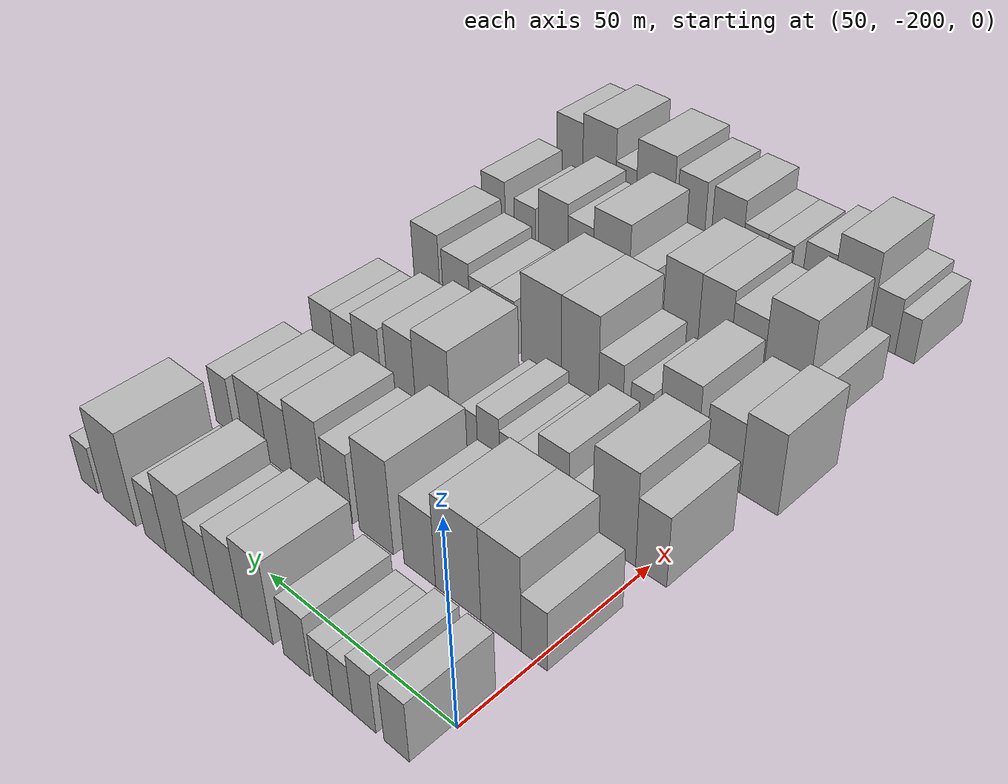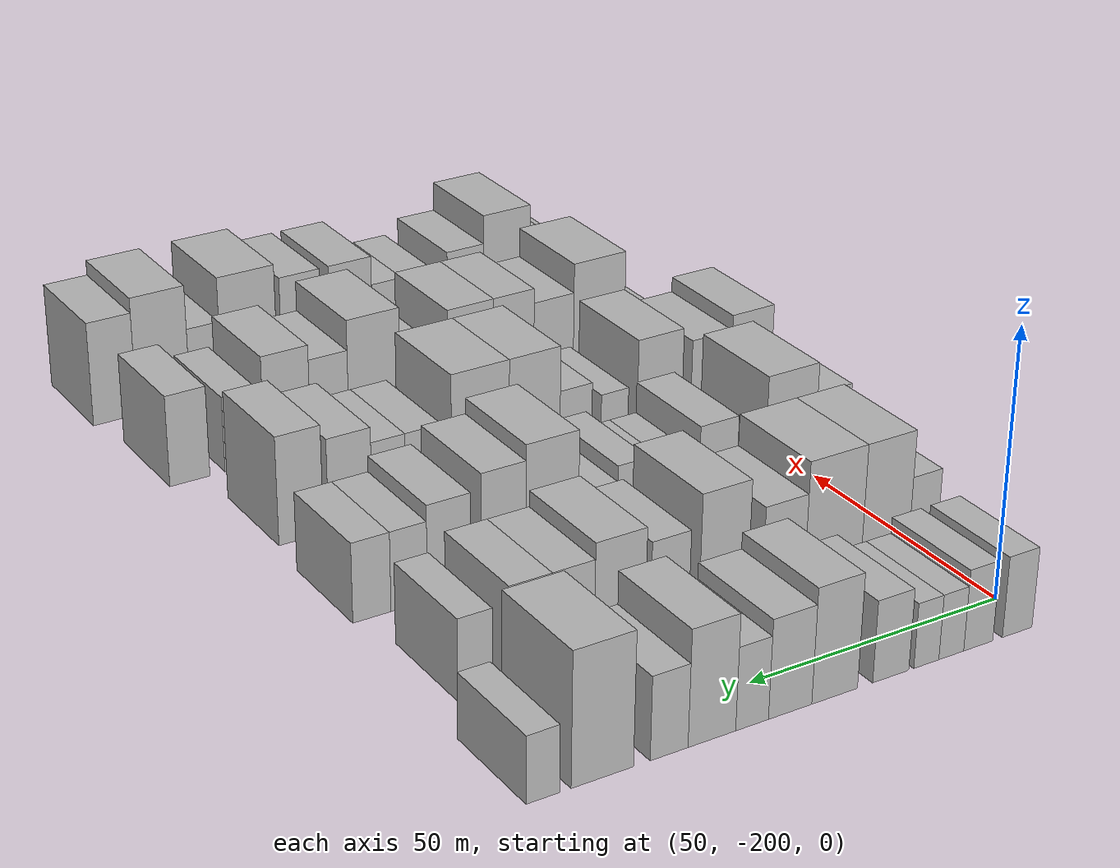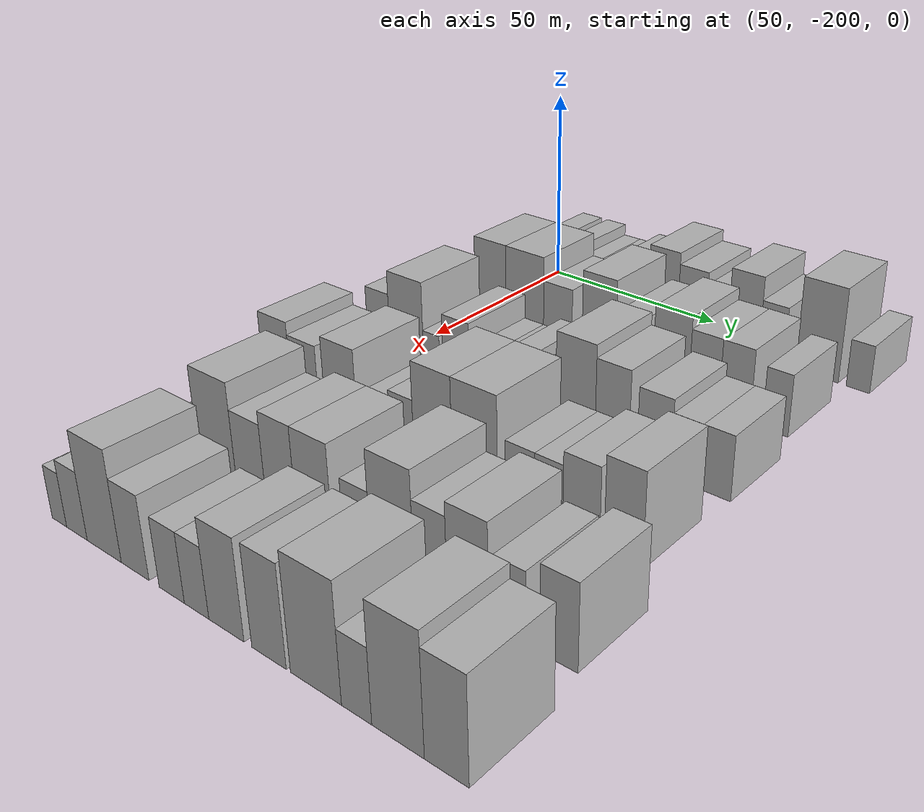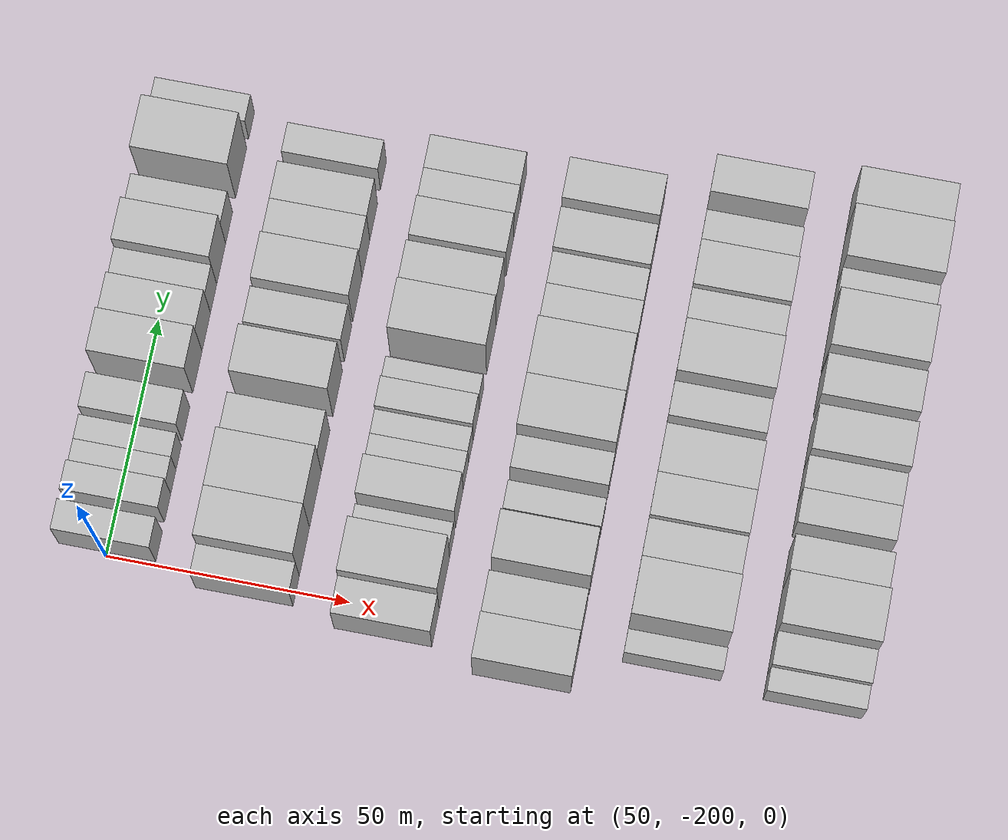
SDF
<sdf version="1.6">
 <world name="default">
  <model name="building_37">
   <static>1</static>
   <pose>50.0000 -196.0622 0 0.000000 0.000000 0.000000</pose>
   <link name="link">
    <pose>0 0 7.50 0 0 0</pose>
    <collision name="collision"><geometry><box><size>20.0000 6.2299 15.0000</size></box></geometry></collision>
    <visual name="visual">
     <cast_shadows>0</cast_shadows>
     <geometry><box><size>20.0000 6.2299 15.0000</size></box></geometry>
     <material>
      <script>
       <uri>model://HANNAS_wall/materials/scripts</uri>
       <uri>model://HANNAS_wall/materials/textures</uri>
       <name>vrc/HANNAS_wall</name>
      </script>
     </material>
    </visual>
   </link>
  </model>
  <model name="building_38">
   <static>1</static>
   <pose>50.0000 -187.9374 0 0.000000 0.000000 0.000000</pose>
   <link name="link">
    <pose>0 0 7.50 0 0 0</pose>
    <collision name="collision"><geometry><box><size>20.0000 6.0197 15.0000</size></box></geometry></collision>
    <visual name="visual">
     <cast_shadows>0</cast_shadows>
     <geometry><box><size>20.0000 6.0197 15.0000</size></box></geometry>
     <material>
      <script>
       <uri>model://HANNAS_wall/materials/scripts</uri>
       <uri>model://HANNAS_wall/materials/textures</uri>
       <name>vrc/HANNAS_wall</name>
      </script>
     </material>
    </visual>
   </link>
  </model>
  <model name="building_39">
   <static>1</static>
   <pose>50.0000 -182.3814 0 0.000000 0.000000 0.000000</pose>
   <link name="link">
    <pose>0 0 6.00 0 0 0</pose>
    <collision name="collision"><geometry><box><size>20.0000 5.0922 12.0000</size></box></geometry></collision>
    <visual name="visual">
     <cast_shadows>0</cast_shadows>
     <geometry><box><size>20.0000 5.0922 12.0000</size></box></geometry>
     <material>
      <script>
       <uri>model://HANNAS_wall/materials/scripts</uri>
       <uri>model://HANNAS_wall/materials/textures</uri>
       <name>vrc/HANNAS_wall</name>
      </script>
     </material>
    </visual>
   </link>
  </model>
  <model name="building_40">
   <static>1</static>
   <pose>50.0000 -177.3009 0 0.000000 0.000000 0.000000</pose>
   <link name="link">
    <pose>0 0 6.00 0 0 0</pose>
    <collision name="collision"><geometry><box><size>20.0000 5.0688 12.0000</size></box></geometry></collision>
    <visual name="visual">
     <cast_shadows>0</cast_shadows>
     <geometry><box><size>20.0000 5.0688 12.0000</size></box></geometry>
     <material>
      <script>
       <uri>model://HANNAS_wall/materials/scripts</uri>
       <uri>model://HANNAS_wall/materials/textures</uri>
       <name>vrc/HANNAS_wall</name>
      </script>
     </material>
    </visual>
   </link>
  </model>
  <model name="building_41">
   <static>1</static>
   <pose>50.0000 -170.1626 0 0.000000 0.000000 0.000000</pose>
   <link name="link">
    <pose>0 0 7.50 0 0 0</pose>
    <collision name="collision"><geometry><box><size>20.0000 7.2078 15.0000</size></box></geometry></collision>
    <visual name="visual">
     <cast_shadows>0</cast_shadows>
     <geometry><box><size>20.0000 7.2078 15.0000</size></box></geometry>
     <material>
      <script>
       <uri>model://HANNAS_wall/materials/scripts</uri>
       <uri>model://HANNAS_wall/materials/textures</uri>
       <name>vrc/HANNAS_wall</name>
      </script>
     </material>
    </visual>
   </link>
  </model>
  <model name="building_42">
   <static>1</static>
   <pose>50.0000 -159.1033 0 0.000000 0.000000 0.000000</pose>
   <link name="link">
    <pose>0 0 10.50 0 0 0</pose>
    <collision name="collision"><geometry><box><size>20.0000 8.9109 21.0000</size></box></geometry></collision>
    <visual name="visual">
     <cast_shadows>0</cast_shadows>
     <geometry><box><size>20.0000 8.9109 21.0000</size></box></geometry>
     <material>
      <script>
       <uri>model://HANNAS_wall/materials/scripts</uri>
       <uri>model://HANNAS_wall/materials/textures</uri>
       <name>vrc/HANNAS_wall</name>
      </script>
     </material>
    </visual>
   </link>
  </model>
  <model name="building_43">
   <static>1</static>
   <pose>50.0000 -150.5061 0 0.000000 0.000000 0.000000</pose>
   <link name="link">
    <pose>0 0 9.00 0 0 0</pose>
    <collision name="collision"><geometry><box><size>20.0000 8.2834 18.0000</size></box></geometry></collision>
    <visual name="visual">
     <cast_shadows>0</cast_shadows>
     <geometry><box><size>20.0000 8.2834 18.0000</size></box></geometry>
     <material>
      <script>
       <uri>model://HANNAS_wall/materials/scripts</uri>
       <uri>model://HANNAS_wall/materials/textures</uri>
       <name>vrc/HANNAS_wall</name>
      </script>
     </material>
    </visual>
   </link>
  </model>
  <model name="building_44">
   <static>1</static>
   <pose>50.0000 -143.2804 0 0.000000 0.000000 0.000000</pose>
   <link name="link">
    <pose>0 0 7.50 0 0 0</pose>
    <collision name="collision"><geometry><box><size>20.0000 6.1679 15.0000</size></box></geometry></collision>
    <visual name="visual">
     <cast_shadows>0</cast_shadows>
     <geometry><box><size>20.0000 6.1679 15.0000</size></box></geometry>
     <material>
      <script>
       <uri>model://HANNAS_wall/materials/scripts</uri>
       <uri>model://HANNAS_wall/materials/textures</uri>
       <name>vrc/HANNAS_wall</name>
      </script>
     </material>
    </visual>
   </link>
  </model>
  <model name="building_45">
   <static>1</static>
   <pose>50.0000 -135.7848 0 0.000000 0.000000 0.000000</pose>
   <link name="link">
    <pose>0 0 10.50 0 0 0</pose>
    <collision name="collision"><geometry><box><size>20.0000 8.8232 21.0000</size></box></geometry></collision>
    <visual name="visual">
     <cast_shadows>0</cast_shadows>
     <geometry><box><size>20.0000 8.8232 21.0000</size></box></geometry>
     <material>
      <script>
       <uri>model://HANNAS_wall/materials/scripts</uri>
       <uri>model://HANNAS_wall/materials/textures</uri>
       <name>vrc/HANNAS_wall</name>
      </script>
     </material>
    </visual>
   </link>
  </model>
  <model name="building_46">
   <static>1</static>
   <pose>50.0000 -127.9279 0 0.000000 0.000000 0.000000</pose>
   <link name="link">
    <pose>0 0 7.50 0 0 0</pose>
    <collision name="collision"><geometry><box><size>20.0000 6.8906 15.0000</size></box></geometry></collision>
    <visual name="visual">
     <cast_shadows>0</cast_shadows>
     <geometry><box><size>20.0000 6.8906 15.0000</size></box></geometry>
     <material>
      <script>
       <uri>model://HANNAS_wall/materials/scripts</uri>
       <uri>model://HANNAS_wall/materials/textures</uri>
       <name>vrc/HANNAS_wall</name>
      </script>
     </material>
    </visual>
   </link>
  </model>
  <model name="building_47">
   <static>1</static>
   <pose>50.0000 -115.9457 0 0.000000 0.000000 0.000000</pose>
   <link name="link">
    <pose>0 0 12.00 0 0 0</pose>
    <collision name="collision"><geometry><box><size>20.0000 11.0738 24.0000</size></box></geometry></collision>
    <visual name="visual">
     <cast_shadows>0</cast_shadows>
     <geometry><box><size>20.0000 11.0738 24.0000</size></box></geometry>
     <material>
      <script>
       <uri>model://HANNAS_wall/materials/scripts</uri>
       <uri>model://HANNAS_wall/materials/textures</uri>
       <name>vrc/HANNAS_wall</name>
      </script>
     </material>
    </visual>
   </link>
  </model>
  <model name="building_48">
   <static>1</static>
   <pose>50.0000 -105.5017 0 0.000000 0.000000 0.000000</pose>
   <link name="link">
    <pose>0 0 6.00 0 0 0</pose>
    <collision name="collision"><geometry><box><size>20.0000 5.8141 12.0000</size></box></geometry></collision>
    <visual name="visual">
     <cast_shadows>0</cast_shadows>
     <geometry><box><size>20.0000 5.8141 12.0000</size></box></geometry>
     <material>
      <script>
       <uri>model://HANNAS_wall/materials/scripts</uri>
       <uri>model://HANNAS_wall/materials/textures</uri>
       <name>vrc/HANNAS_wall</name>
      </script>
     </material>
    </visual>
   </link>
  </model>
  <model name="building_154">
   <static>1</static>
   <pose>79.0000 -199.7147 0 0.000000 0.000000 0.000000</pose>
   <link name="link">
    <pose>0 0 7.50 0 0 0</pose>
    <collision name="collision"><geometry><box><size>20.0000 6.2357 15.0000</size></box></geometry></collision>
    <visual name="visual">
     <cast_shadows>0</cast_shadows>
     <geometry><box><size>20.0000 6.2357 15.0000</size></box></geometry>
     <material>
      <script>
       <uri>model://HANNAS_wall/materials/scripts</uri>
       <uri>model://HANNAS_wall/materials/textures</uri>
       <name>vrc/HANNAS_wall</name>
      </script>
     </material>
    </visual>
   </link>
  </model>
  <model name="building_155">
   <static>1</static>
   <pose>79.0000 -191.5284 0 0.000000 0.000000 0.000000</pose>
   <link name="link">
    <pose>0 0 12.00 0 0 0</pose>
    <collision name="collision"><geometry><box><size>20.0000 10.1368 24.0000</size></box></geometry></collision>
    <visual name="visual">
     <cast_shadows>0</cast_shadows>
     <geometry><box><size>20.0000 10.1368 24.0000</size></box></geometry>
     <material>
      <script>
       <uri>model://HANNAS_wall/materials/scripts</uri>
       <uri>model://HANNAS_wall/materials/textures</uri>
       <name>vrc/HANNAS_wall</name>
      </script>
     </material>
    </visual>
   </link>
  </model>
  <model name="building_156">
   <static>1</static>
   <pose>79.0000 -180.5337 0 0.000000 0.000000 0.000000</pose>
   <link name="link">
    <pose>0 0 12.00 0 0 0</pose>
    <collision name="collision"><geometry><box><size>20.0000 11.8526 24.0000</size></box></geometry></collision>
    <visual name="visual">
     <cast_shadows>0</cast_shadows>
     <geometry><box><size>20.0000 11.8526 24.0000</size></box></geometry>
     <material>
      <script>
       <uri>model://HANNAS_wall/materials/scripts</uri>
       <uri>model://HANNAS_wall/materials/textures</uri>
       <name>vrc/HANNAS_wall</name>
      </script>
     </material>
    </visual>
   </link>
  </model>
  <model name="building_157">
   <static>1</static>
   <pose>79.0000 -170.2882 0 0.000000 0.000000 0.000000</pose>
   <link name="link">
    <pose>0 0 9.00 0 0 0</pose>
    <collision name="collision"><geometry><box><size>20.0000 8.6382 18.0000</size></box></geometry></collision>
    <visual name="visual">
     <cast_shadows>0</cast_shadows>
     <geometry><box><size>20.0000 8.6382 18.0000</size></box></geometry>
     <material>
      <script>
       <uri>model://HANNAS_wall/materials/scripts</uri>
       <uri>model://HANNAS_wall/materials/textures</uri>
       <name>vrc/HANNAS_wall</name>
      </script>
     </material>
    </visual>
   </link>
  </model>
  <model name="building_158">
   <static>1</static>
   <pose>79.0000 -158.1183 0 0.000000 0.000000 0.000000</pose>
   <link name="link">
    <pose>0 0 12.00 0 0 0</pose>
    <collision name="collision"><geometry><box><size>20.0000 9.7017 24.0000</size></box></geometry></collision>
    <visual name="visual">
     <cast_shadows>0</cast_shadows>
     <geometry><box><size>20.0000 9.7017 24.0000</size></box></geometry>
     <material>
      <script>
       <uri>model://HANNAS_wall/materials/scripts</uri>
       <uri>model://HANNAS_wall/materials/textures</uri>
       <name>vrc/HANNAS_wall</name>
      </script>
     </material>
    </visual>
   </link>
  </model>
  <model name="building_159">
   <static>1</static>
   <pose>79.0000 -147.5136 0 0.000000 0.000000 0.000000</pose>
   <link name="link">
    <pose>0 0 9.00 0 0 0</pose>
    <collision name="collision"><geometry><box><size>20.0000 7.5076 18.0000</size></box></geometry></collision>
    <visual name="visual">
     <cast_shadows>0</cast_shadows>
     <geometry><box><size>20.0000 7.5076 18.0000</size></box></geometry>
     <material>
      <script>
       <uri>model://HANNAS_wall/materials/scripts</uri>
       <uri>model://HANNAS_wall/materials/textures</uri>
       <name>vrc/HANNAS_wall</name>
      </script>
     </material>
    </visual>
   </link>
  </model>
  <model name="building_160">
   <static>1</static>
   <pose>79.0000 -137.8927 0 0.000000 0.000000 0.000000</pose>
   <link name="link">
    <pose>0 0 10.50 0 0 0</pose>
    <collision name="collision"><geometry><box><size>20.0000 9.7341 21.0000</size></box></geometry></collision>
    <visual name="visual">
     <cast_shadows>0</cast_shadows>
     <geometry><box><size>20.0000 9.7341 21.0000</size></box></geometry>
     <material>
      <script>
       <uri>model://HANNAS_wall/materials/scripts</uri>
       <uri>model://HANNAS_wall/materials/textures</uri>
       <name>vrc/HANNAS_wall</name>
      </script>
     </material>
    </visual>
   </link>
  </model>
  <model name="building_161">
   <static>1</static>
   <pose>79.0000 -129.0497 0 0.000000 0.000000 0.000000</pose>
   <link name="link">
    <pose>0 0 9.00 0 0 0</pose>
    <collision name="collision"><geometry><box><size>20.0000 7.9519 18.0000</size></box></geometry></collision>
    <visual name="visual">
     <cast_shadows>0</cast_shadows>
     <geometry><box><size>20.0000 7.9519 18.0000</size></box></geometry>
     <material>
      <script>
       <uri>model://HANNAS_wall/materials/scripts</uri>
       <uri>model://HANNAS_wall/materials/textures</uri>
       <name>vrc/HANNAS_wall</name>
      </script>
     </material>
    </visual>
   </link>
  </model>
  <model name="building_162">
   <static>1</static>
   <pose>79.0000 -121.0985 0 0.000000 0.000000 0.000000</pose>
   <link name="link">
    <pose>0 0 9.00 0 0 0</pose>
    <collision name="collision"><geometry><box><size>20.0000 7.9505 18.0000</size></box></geometry></collision>
    <visual name="visual">
     <cast_shadows>0</cast_shadows>
     <geometry><box><size>20.0000 7.9505 18.0000</size></box></geometry>
     <material>
      <script>
       <uri>model://HANNAS_wall/materials/scripts</uri>
       <uri>model://HANNAS_wall/materials/textures</uri>
       <name>vrc/HANNAS_wall</name>
      </script>
     </material>
    </visual>
   </link>
  </model>
  <model name="building_163">
   <static>1</static>
   <pose>79.0000 -110.9820 0 0.000000 0.000000 0.000000</pose>
   <link name="link">
    <pose>0 0 7.50 0 0 0</pose>
    <collision name="collision"><geometry><box><size>20.0000 6.2825 15.0000</size></box></geometry></collision>
    <visual name="visual">
     <cast_shadows>0</cast_shadows>
     <geometry><box><size>20.0000 6.2825 15.0000</size></box></geometry>
     <material>
      <script>
       <uri>model://HANNAS_wall/materials/scripts</uri>
       <uri>model://HANNAS_wall/materials/textures</uri>
       <name>vrc/HANNAS_wall</name>
      </script>
     </material>
    </visual>
   </link>
  </model>
  <model name="building_272">
   <static>1</static>
   <pose>108.0000 -201.8906 0 0.000000 0.000000 0.000000</pose>
   <link name="link">
    <pose>0 0 9.00 0 0 0</pose>
    <collision name="collision"><geometry><box><size>20.0000 7.5338 18.0000</size></box></geometry></collision>
    <visual name="visual">
     <cast_shadows>0</cast_shadows>
     <geometry><box><size>20.0000 7.5338 18.0000</size></box></geometry>
     <material>
      <script>
       <uri>model://HANNAS_wall/materials/scripts</uri>
       <uri>model://HANNAS_wall/materials/textures</uri>
       <name>vrc/HANNAS_wall</name>
      </script>
     </material>
    </visual>
   </link>
  </model>
  <model name="building_273">
   <static>1</static>
   <pose>108.0000 -192.6743 0 0.000000 0.000000 0.000000</pose>
   <link name="link">
    <pose>0 0 12.00 0 0 0</pose>
    <collision name="collision"><geometry><box><size>20.0000 10.8989 24.0000</size></box></geometry></collision>
    <visual name="visual">
     <cast_shadows>0</cast_shadows>
     <geometry><box><size>20.0000 10.8989 24.0000</size></box></geometry>
     <material>
      <script>
       <uri>model://HANNAS_wall/materials/scripts</uri>
       <uri>model://HANNAS_wall/materials/textures</uri>
       <name>vrc/HANNAS_wall</name>
      </script>
     </material>
    </visual>
   </link>
  </model>
  <model name="building_274">
   <static>1</static>
   <pose>108.0000 -184.7033 0 0.000000 0.000000 0.000000</pose>
   <link name="link">
    <pose>0 0 6.00 0 0 0</pose>
    <collision name="collision"><geometry><box><size>20.0000 5.0431 12.0000</size></box></geometry></collision>
    <visual name="visual">
     <cast_shadows>0</cast_shadows>
     <geometry><box><size>20.0000 5.0431 12.0000</size></box></geometry>
     <material>
      <script>
       <uri>model://HANNAS_wall/materials/scripts</uri>
       <uri>model://HANNAS_wall/materials/textures</uri>
       <name>vrc/HANNAS_wall</name>
      </script>
     </material>
    </visual>
   </link>
  </model>
  <model name="building_275">
   <static>1</static>
   <pose>108.0000 -177.1584 0 0.000000 0.000000 0.000000</pose>
   <link name="link">
    <pose>0 0 9.00 0 0 0</pose>
    <collision name="collision"><geometry><box><size>20.0000 8.0467 18.0000</size></box></geometry></collision>
    <visual name="visual">
     <cast_shadows>0</cast_shadows>
     <geometry><box><size>20.0000 8.0467 18.0000</size></box></geometry>
     <material>
      <script>
       <uri>model://HANNAS_wall/materials/scripts</uri>
       <uri>model://HANNAS_wall/materials/textures</uri>
       <name>vrc/HANNAS_wall</name>
      </script>
     </material>
    </visual>
   </link>
  </model>
  <model name="building_276">
   <static>1</static>
   <pose>108.0000 -170.3274 0 0.000000 0.000000 0.000000</pose>
   <link name="link">
    <pose>0 0 6.00 0 0 0</pose>
    <collision name="collision"><geometry><box><size>20.0000 5.6153 12.0000</size></box></geometry></collision>
    <visual name="visual">
     <cast_shadows>0</cast_shadows>
     <geometry><box><size>20.0000 5.6153 12.0000</size></box></geometry>
     <material>
      <script>
       <uri>model://HANNAS_wall/materials/scripts</uri>
       <uri>model://HANNAS_wall/materials/textures</uri>
       <name>vrc/HANNAS_wall</name>
      </script>
     </material>
    </visual>
   </link>
  </model>
  <model name="building_277">
   <static>1</static>
   <pose>108.0000 -164.9967 0 0.000000 0.000000 0.000000</pose>
   <link name="link">
    <pose>0 0 6.00 0 0 0</pose>
    <collision name="collision"><geometry><box><size>20.0000 5.0461 12.0000</size></box></geometry></collision>
    <visual name="visual">
     <cast_shadows>0</cast_shadows>
     <geometry><box><size>20.0000 5.0461 12.0000</size></box></geometry>
     <material>
      <script>
       <uri>model://HANNAS_wall/materials/scripts</uri>
       <uri>model://HANNAS_wall/materials/textures</uri>
       <name>vrc/HANNAS_wall</name>
      </script>
     </material>
    </visual>
   </link>
  </model>
  <model name="building_278">
   <static>1</static>
   <pose>108.0000 -159.3446 0 0.000000 0.000000 0.000000</pose>
   <link name="link">
    <pose>0 0 7.50 0 0 0</pose>
    <collision name="collision"><geometry><box><size>20.0000 6.2581 15.0000</size></box></geometry></collision>
    <visual name="visual">
     <cast_shadows>0</cast_shadows>
     <geometry><box><size>20.0000 6.2581 15.0000</size></box></geometry>
     <material>
      <script>
       <uri>model://HANNAS_wall/materials/scripts</uri>
       <uri>model://HANNAS_wall/materials/textures</uri>
       <name>vrc/HANNAS_wall</name>
      </script>
     </material>
    </visual>
   </link>
  </model>
  <model name="building_279">
   <static>1</static>
   <pose>108.0000 -153.7926 0 0.000000 0.000000 0.000000</pose>
   <link name="link">
    <pose>0 0 6.00 0 0 0</pose>
    <collision name="collision"><geometry><box><size>20.0000 4.8460 12.0000</size></box></geometry></collision>
    <visual name="visual">
     <cast_shadows>0</cast_shadows>
     <geometry><box><size>20.0000 4.8460 12.0000</size></box></geometry>
     <material>
      <script>
       <uri>model://HANNAS_wall/materials/scripts</uri>
       <uri>model://HANNAS_wall/materials/textures</uri>
       <name>vrc/HANNAS_wall</name>
      </script>
     </material>
    </visual>
   </link>
  </model>
  <model name="building_280">
   <static>1</static>
   <pose>108.0000 -143.1485 0 0.000000 0.000000 0.000000</pose>
   <link name="link">
    <pose>0 0 12.00 0 0 0</pose>
    <collision name="collision"><geometry><box><size>20.0000 10.4421 24.0000</size></box></geometry></collision>
    <visual name="visual">
     <cast_shadows>0</cast_shadows>
     <geometry><box><size>20.0000 10.4421 24.0000</size></box></geometry>
     <material>
      <script>
       <uri>model://HANNAS_wall/materials/scripts</uri>
       <uri>model://HANNAS_wall/materials/textures</uri>
       <name>vrc/HANNAS_wall</name>
      </script>
     </material>
    </visual>
   </link>
  </model>
  <model name="building_281">
   <static>1</static>
   <pose>108.0000 -133.5774 0 0.000000 0.000000 0.000000</pose>
   <link name="link">
    <pose>0 0 10.50 0 0 0</pose>
    <collision name="collision"><geometry><box><size>20.0000 8.7001 21.0000</size></box></geometry></collision>
    <visual name="visual">
     <cast_shadows>0</cast_shadows>
     <geometry><box><size>20.0000 8.7001 21.0000</size></box></geometry>
     <material>
      <script>
       <uri>model://HANNAS_wall/materials/scripts</uri>
       <uri>model://HANNAS_wall/materials/textures</uri>
       <name>vrc/HANNAS_wall</name>
      </script>
     </material>
    </visual>
   </link>
  </model>
  <model name="building_282">
   <static>1</static>
   <pose>108.0000 -123.0430 0 0.000000 0.000000 0.000000</pose>
   <link name="link">
    <pose>0 0 9.00 0 0 0</pose>
    <collision name="collision"><geometry><box><size>20.0000 8.3687 18.0000</size></box></geometry></collision>
    <visual name="visual">
     <cast_shadows>0</cast_shadows>
     <geometry><box><size>20.0000 8.3687 18.0000</size></box></geometry>
     <material>
      <script>
       <uri>model://HANNAS_wall/materials/scripts</uri>
       <uri>model://HANNAS_wall/materials/textures</uri>
       <name>vrc/HANNAS_wall</name>
      </script>
     </material>
    </visual>
   </link>
  </model>
  <model name="building_283">
   <static>1</static>
   <pose>108.0000 -115.4103 0 0.000000 0.000000 0.000000</pose>
   <link name="link">
    <pose>0 0 7.50 0 0 0</pose>
    <collision name="collision"><geometry><box><size>20.0000 6.8967 15.0000</size></box></geometry></collision>
    <visual name="visual">
     <cast_shadows>0</cast_shadows>
     <geometry><box><size>20.0000 6.8967 15.0000</size></box></geometry>
     <material>
      <script>
       <uri>model://HANNAS_wall/materials/scripts</uri>
       <uri>model://HANNAS_wall/materials/textures</uri>
       <name>vrc/HANNAS_wall</name>
      </script>
     </material>
    </visual>
   </link>
  </model>
  <model name="building_284">
   <static>1</static>
   <pose>108.0000 -108.4004 0 0.000000 0.000000 0.000000</pose>
   <link name="link">
    <pose>0 0 7.50 0 0 0</pose>
    <collision name="collision"><geometry><box><size>20.0000 7.1233 15.0000</size></box></geometry></collision>
    <visual name="visual">
     <cast_shadows>0</cast_shadows>
     <geometry><box><size>20.0000 7.1233 15.0000</size></box></geometry>
     <material>
      <script>
       <uri>model://HANNAS_wall/materials/scripts</uri>
       <uri>model://HANNAS_wall/materials/textures</uri>
       <name>vrc/HANNAS_wall</name>
      </script>
     </material>
    </visual>
   </link>
  </model>
  <model name="building_390">
   <static>1</static>
   <pose>137.0000 -204.9074 0 0.000000 0.000000 0.000000</pose>
   <link name="link">
    <pose>0 0 10.50 0 0 0</pose>
    <collision name="collision"><geometry><box><size>20.0000 9.3126 21.0000</size></box></geometry></collision>
    <visual name="visual">
     <cast_shadows>0</cast_shadows>
     <geometry><box><size>20.0000 9.3126 21.0000</size></box></geometry>
     <material>
      <script>
       <uri>model://HANNAS_wall/materials/scripts</uri>
       <uri>model://HANNAS_wall/materials/textures</uri>
       <name>vrc/HANNAS_wall</name>
      </script>
     </material>
    </visual>
   </link>
  </model>
  <model name="building_391">
   <static>1</static>
   <pose>137.0000 -195.8137 0 0.000000 0.000000 0.000000</pose>
   <link name="link">
    <pose>0 0 9.00 0 0 0</pose>
    <collision name="collision"><geometry><box><size>20.0000 8.8749 18.0000</size></box></geometry></collision>
    <visual name="visual">
     <cast_shadows>0</cast_shadows>
     <geometry><box><size>20.0000 8.8749 18.0000</size></box></geometry>
     <material>
      <script>
       <uri>model://HANNAS_wall/materials/scripts</uri>
       <uri>model://HANNAS_wall/materials/textures</uri>
       <name>vrc/HANNAS_wall</name>
      </script>
     </material>
    </visual>
   </link>
  </model>
  <model name="building_392">
   <static>1</static>
   <pose>137.0000 -184.4291 0 0.000000 0.000000 0.000000</pose>
   <link name="link">
    <pose>0 0 10.50 0 0 0</pose>
    <collision name="collision"><geometry><box><size>20.0000 9.8943 21.0000</size></box></geometry></collision>
    <visual name="visual">
     <cast_shadows>0</cast_shadows>
     <geometry><box><size>20.0000 9.8943 21.0000</size></box></geometry>
     <material>
      <script>
       <uri>model://HANNAS_wall/materials/scripts</uri>
       <uri>model://HANNAS_wall/materials/textures</uri>
       <name>vrc/HANNAS_wall</name>
      </script>
     </material>
    </visual>
   </link>
  </model>
  <model name="building_393">
   <static>1</static>
   <pose>137.0000 -174.5512 0 0.000000 0.000000 0.000000</pose>
   <link name="link">
    <pose>0 0 6.00 0 0 0</pose>
    <collision name="collision"><geometry><box><size>20.0000 5.8615 12.0000</size></box></geometry></collision>
    <visual name="visual">
     <cast_shadows>0</cast_shadows>
     <geometry><box><size>20.0000 5.8615 12.0000</size></box></geometry>
     <material>
      <script>
       <uri>model://HANNAS_wall/materials/scripts</uri>
       <uri>model://HANNAS_wall/materials/textures</uri>
       <name>vrc/HANNAS_wall</name>
      </script>
     </material>
    </visual>
   </link>
  </model>
  <model name="building_394">
   <static>1</static>
   <pose>137.0000 -166.2139 0 0.000000 0.000000 0.000000</pose>
   <link name="link">
    <pose>0 0 7.50 0 0 0</pose>
    <collision name="collision"><geometry><box><size>20.0000 6.8131 15.0000</size></box></geometry></collision>
    <visual name="visual">
     <cast_shadows>0</cast_shadows>
     <geometry><box><size>20.0000 6.8131 15.0000</size></box></geometry>
     <material>
      <script>
       <uri>model://HANNAS_wall/materials/scripts</uri>
       <uri>model://HANNAS_wall/materials/textures</uri>
       <name>vrc/HANNAS_wall</name>
      </script>
     </material>
    </visual>
   </link>
  </model>
  <model name="building_395">
   <static>1</static>
   <pose>137.0000 -157.4845 0 0.000000 0.000000 0.000000</pose>
   <link name="link">
    <pose>0 0 12.00 0 0 0</pose>
    <collision name="collision"><geometry><box><size>20.0000 10.6457 24.0000</size></box></geometry></collision>
    <visual name="visual">
     <cast_shadows>0</cast_shadows>
     <geometry><box><size>20.0000 10.6457 24.0000</size></box></geometry>
     <material>
      <script>
       <uri>model://HANNAS_wall/materials/scripts</uri>
       <uri>model://HANNAS_wall/materials/textures</uri>
       <name>vrc/HANNAS_wall</name>
      </script>
     </material>
    </visual>
   </link>
  </model>
  <model name="building_396">
   <static>1</static>
   <pose>137.0000 -146.2264 0 0.000000 0.000000 0.000000</pose>
   <link name="link">
    <pose>0 0 12.00 0 0 0</pose>
    <collision name="collision"><geometry><box><size>20.0000 11.8704 24.0000</size></box></geometry></collision>
    <visual name="visual">
     <cast_shadows>0</cast_shadows>
     <geometry><box><size>20.0000 11.8704 24.0000</size></box></geometry>
     <material>
      <script>
       <uri>model://HANNAS_wall/materials/scripts</uri>
       <uri>model://HANNAS_wall/materials/textures</uri>
       <name>vrc/HANNAS_wall</name>
      </script>
     </material>
    </visual>
   </link>
  </model>
  <model name="building_397">
   <static>1</static>
   <pose>137.0000 -134.6455 0 0.000000 0.000000 0.000000</pose>
   <link name="link">
    <pose>0 0 7.50 0 0 0</pose>
    <collision name="collision"><geometry><box><size>20.0000 7.2915 15.0000</size></box></geometry></collision>
    <visual name="visual">
     <cast_shadows>0</cast_shadows>
     <geometry><box><size>20.0000 7.2915 15.0000</size></box></geometry>
     <material>
      <script>
       <uri>model://HANNAS_wall/materials/scripts</uri>
       <uri>model://HANNAS_wall/materials/textures</uri>
       <name>vrc/HANNAS_wall</name>
      </script>
     </material>
    </visual>
   </link>
  </model>
  <model name="building_398">
   <static>1</static>
   <pose>137.0000 -127.6185 0 0.000000 0.000000 0.000000</pose>
   <link name="link">
    <pose>0 0 7.50 0 0 0</pose>
    <collision name="collision"><geometry><box><size>20.0000 6.7627 15.0000</size></box></geometry></collision>
    <visual name="visual">
     <cast_shadows>0</cast_shadows>
     <geometry><box><size>20.0000 6.7627 15.0000</size></box></geometry>
     <material>
      <script>
       <uri>model://HANNAS_wall/materials/scripts</uri>
       <uri>model://HANNAS_wall/materials/textures</uri>
       <name>vrc/HANNAS_wall</name>
      </script>
     </material>
    </visual>
   </link>
  </model>
  <model name="building_399">
   <static>1</static>
   <pose>137.0000 -119.9367 0 0.000000 0.000000 0.000000</pose>
   <link name="link">
    <pose>0 0 9.00 0 0 0</pose>
    <collision name="collision"><geometry><box><size>20.0000 8.6008 18.0000</size></box></geometry></collision>
    <visual name="visual">
     <cast_shadows>0</cast_shadows>
     <geometry><box><size>20.0000 8.6008 18.0000</size></box></geometry>
     <material>
      <script>
       <uri>model://HANNAS_wall/materials/scripts</uri>
       <uri>model://HANNAS_wall/materials/textures</uri>
       <name>vrc/HANNAS_wall</name>
      </script>
     </material>
    </visual>
   </link>
  </model>
  <model name="building_400">
   <static>1</static>
   <pose>137.0000 -110.3137 0 0.000000 0.000000 0.000000</pose>
   <link name="link">
    <pose>0 0 10.50 0 0 0</pose>
    <collision name="collision"><geometry><box><size>20.0000 8.6453 21.0000</size></box></geometry></collision>
    <visual name="visual">
     <cast_shadows>0</cast_shadows>
     <geometry><box><size>20.0000 8.6453 21.0000</size></box></geometry>
     <material>
      <script>
       <uri>model://HANNAS_wall/materials/scripts</uri>
       <uri>model://HANNAS_wall/materials/textures</uri>
       <name>vrc/HANNAS_wall</name>
      </script>
     </material>
    </visual>
   </link>
  </model>
  <model name="building_506">
   <static>1</static>
   <pose>166.0000 -199.0255 0 0.000000 0.000000 0.000000</pose>
   <link name="link">
    <pose>0 0 6.00 0 0 0</pose>
    <collision name="collision"><geometry><box><size>20.0000 4.8212 12.0000</size></box></geometry></collision>
    <visual name="visual">
     <cast_shadows>0</cast_shadows>
     <geometry><box><size>20.0000 4.8212 12.0000</size></box></geometry>
     <material>
      <script>
       <uri>model://HANNAS_wall/materials/scripts</uri>
       <uri>model://HANNAS_wall/materials/textures</uri>
       <name>vrc/HANNAS_wall</name>
      </script>
     </material>
    </visual>
   </link>
  </model>
  <model name="building_507">
   <static>1</static>
   <pose>166.0000 -189.7992 0 0.000000 0.000000 0.000000</pose>
   <link name="link">
    <pose>0 0 12.00 0 0 0</pose>
    <collision name="collision"><geometry><box><size>20.0000 11.6315 24.0000</size></box></geometry></collision>
    <visual name="visual">
     <cast_shadows>0</cast_shadows>
     <geometry><box><size>20.0000 11.6315 24.0000</size></box></geometry>
     <material>
      <script>
       <uri>model://HANNAS_wall/materials/scripts</uri>
       <uri>model://HANNAS_wall/materials/textures</uri>
       <name>vrc/HANNAS_wall</name>
      </script>
     </material>
    </visual>
   </link>
  </model>
  <model name="building_508">
   <static>1</static>
   <pose>166.0000 -179.5379 0 0.000000 0.000000 0.000000</pose>
   <link name="link">
    <pose>0 0 9.00 0 0 0</pose>
    <collision name="collision"><geometry><box><size>20.0000 8.8912 18.0000</size></box></geometry></collision>
    <visual name="visual">
     <cast_shadows>0</cast_shadows>
     <geometry><box><size>20.0000 8.8912 18.0000</size></box></geometry>
     <material>
      <script>
       <uri>model://HANNAS_wall/materials/scripts</uri>
       <uri>model://HANNAS_wall/materials/textures</uri>
       <name>vrc/HANNAS_wall</name>
      </script>
     </material>
    </visual>
   </link>
  </model>
  <model name="building_509">
   <static>1</static>
   <pose>166.0000 -170.6552 0 0.000000 0.000000 0.000000</pose>
   <link name="link">
    <pose>0 0 10.50 0 0 0</pose>
    <collision name="collision"><geometry><box><size>20.0000 8.8743 21.0000</size></box></geometry></collision>
    <visual name="visual">
     <cast_shadows>0</cast_shadows>
     <geometry><box><size>20.0000 8.8743 21.0000</size></box></geometry>
     <material>
      <script>
       <uri>model://HANNAS_wall/materials/scripts</uri>
       <uri>model://HANNAS_wall/materials/textures</uri>
       <name>vrc/HANNAS_wall</name>
      </script>
     </material>
    </visual>
   </link>
  </model>
  <model name="building_510">
   <static>1</static>
   <pose>166.0000 -161.2105 0 0.000000 0.000000 0.000000</pose>
   <link name="link">
    <pose>0 0 10.50 0 0 0</pose>
    <collision name="collision"><geometry><box><size>20.0000 10.0150 21.0000</size></box></geometry></collision>
    <visual name="visual">
     <cast_shadows>0</cast_shadows>
     <geometry><box><size>20.0000 10.0150 21.0000</size></box></geometry>
     <material>
      <script>
       <uri>model://HANNAS_wall/materials/scripts</uri>
       <uri>model://HANNAS_wall/materials/textures</uri>
       <name>vrc/HANNAS_wall</name>
      </script>
     </material>
    </visual>
   </link>
  </model>
  <model name="building_511">
   <static>1</static>
   <pose>166.0000 -149.6258 0 0.000000 0.000000 0.000000</pose>
   <link name="link">
    <pose>0 0 7.50 0 0 0</pose>
    <collision name="collision"><geometry><box><size>20.0000 7.1544 15.0000</size></box></geometry></collision>
    <visual name="visual">
     <cast_shadows>0</cast_shadows>
     <geometry><box><size>20.0000 7.1544 15.0000</size></box></geometry>
     <material>
      <script>
       <uri>model://HANNAS_wall/materials/scripts</uri>
       <uri>model://HANNAS_wall/materials/textures</uri>
       <name>vrc/HANNAS_wall</name>
      </script>
     </material>
    </visual>
   </link>
  </model>
  <model name="building_512">
   <static>1</static>
   <pose>166.0000 -140.6101 0 0.000000 0.000000 0.000000</pose>
   <link name="link">
    <pose>0 0 12.00 0 0 0</pose>
    <collision name="collision"><geometry><box><size>20.0000 10.8771 24.0000</size></box></geometry></collision>
    <visual name="visual">
     <cast_shadows>0</cast_shadows>
     <geometry><box><size>20.0000 10.8771 24.0000</size></box></geometry>
     <material>
      <script>
       <uri>model://HANNAS_wall/materials/scripts</uri>
       <uri>model://HANNAS_wall/materials/textures</uri>
       <name>vrc/HANNAS_wall</name>
      </script>
     </material>
    </visual>
   </link>
  </model>
  <model name="building_513">
   <static>1</static>
   <pose>166.0000 -131.2106 0 0.000000 0.000000 0.000000</pose>
   <link name="link">
    <pose>0 0 9.00 0 0 0</pose>
    <collision name="collision"><geometry><box><size>20.0000 7.9220 18.0000</size></box></geometry></collision>
    <visual name="visual">
     <cast_shadows>0</cast_shadows>
     <geometry><box><size>20.0000 7.9220 18.0000</size></box></geometry>
     <material>
      <script>
       <uri>model://HANNAS_wall/materials/scripts</uri>
       <uri>model://HANNAS_wall/materials/textures</uri>
       <name>vrc/HANNAS_wall</name>
      </script>
     </material>
    </visual>
   </link>
  </model>
  <model name="building_514">
   <static>1</static>
   <pose>166.0000 -122.5224 0 0.000000 0.000000 0.000000</pose>
   <link name="link">
    <pose>0 0 10.50 0 0 0</pose>
    <collision name="collision"><geometry><box><size>20.0000 9.4544 21.0000</size></box></geometry></collision>
    <visual name="visual">
     <cast_shadows>0</cast_shadows>
     <geometry><box><size>20.0000 9.4544 21.0000</size></box></geometry>
     <material>
      <script>
       <uri>model://HANNAS_wall/materials/scripts</uri>
       <uri>model://HANNAS_wall/materials/textures</uri>
       <name>vrc/HANNAS_wall</name>
      </script>
     </material>
    </visual>
   </link>
  </model>
  <model name="building_515">
   <static>1</static>
   <pose>166.0000 -113.2825 0 0.000000 0.000000 0.000000</pose>
   <link name="link">
    <pose>0 0 7.50 0 0 0</pose>
    <collision name="collision"><geometry><box><size>20.0000 7.0253 15.0000</size></box></geometry></collision>
    <visual name="visual">
     <cast_shadows>0</cast_shadows>
     <geometry><box><size>20.0000 7.0253 15.0000</size></box></geometry>
     <material>
      <script>
       <uri>model://HANNAS_wall/materials/scripts</uri>
       <uri>model://HANNAS_wall/materials/textures</uri>
       <name>vrc/HANNAS_wall</name>
      </script>
     </material>
    </visual>
   </link>
  </model>
  <model name="building_516">
   <static>1</static>
   <pose>166.0000 -102.8206 0 0.000000 0.000000 0.000000</pose>
   <link name="link">
    <pose>0 0 9.00 0 0 0</pose>
    <collision name="collision"><geometry><box><size>20.0000 7.8986 18.0000</size></box></geometry></collision>
    <visual name="visual">
     <cast_shadows>0</cast_shadows>
     <geometry><box><size>20.0000 7.8986 18.0000</size></box></geometry>
     <material>
      <script>
       <uri>model://HANNAS_wall/materials/scripts</uri>
       <uri>model://HANNAS_wall/materials/textures</uri>
       <name>vrc/HANNAS_wall</name>
      </script>
     </material>
    </visual>
   </link>
  </model>
  <model name="building_618">
   <static>1</static>
   <pose>195.0000 -201.1813 0 0.000000 0.000000 0.000000</pose>
   <link name="link">
    <pose>0 0 6.00 0 0 0</pose>
    <collision name="collision"><geometry><box><size>20.0000 4.8496 12.0000</size></box></geometry></collision>
    <visual name="visual">
     <cast_shadows>0</cast_shadows>
     <geometry><box><size>20.0000 4.8496 12.0000</size></box></geometry>
     <material>
      <script>
       <uri>model://HANNAS_wall/materials/scripts</uri>
       <uri>model://HANNAS_wall/materials/textures</uri>
       <name>vrc/HANNAS_wall</name>
      </script>
     </material>
    </visual>
   </link>
  </model>
  <model name="building_619">
   <static>1</static>
   <pose>195.0000 -195.3529 0 0.000000 0.000000 0.000000</pose>
   <link name="link">
    <pose>0 0 7.50 0 0 0</pose>
    <collision name="collision"><geometry><box><size>20.0000 6.8071 15.0000</size></box></geometry></collision>
    <visual name="visual">
     <cast_shadows>0</cast_shadows>
     <geometry><box><size>20.0000 6.8071 15.0000</size></box></geometry>
     <material>
      <script>
       <uri>model://HANNAS_wall/materials/scripts</uri>
       <uri>model://HANNAS_wall/materials/textures</uri>
       <name>vrc/HANNAS_wall</name>
      </script>
     </material>
    </visual>
   </link>
  </model>
  <model name="building_620">
   <static>1</static>
   <pose>195.0000 -186.5542 0 0.000000 0.000000 0.000000</pose>
   <link name="link">
    <pose>0 0 12.00 0 0 0</pose>
    <collision name="collision"><geometry><box><size>20.0000 10.7904 24.0000</size></box></geometry></collision>
    <visual name="visual">
     <cast_shadows>0</cast_shadows>
     <geometry><box><size>20.0000 10.7904 24.0000</size></box></geometry>
     <material>
      <script>
       <uri>model://HANNAS_wall/materials/scripts</uri>
       <uri>model://HANNAS_wall/materials/textures</uri>
       <name>vrc/HANNAS_wall</name>
      </script>
     </material>
    </visual>
   </link>
  </model>
  <model name="building_621">
   <static>1</static>
   <pose>195.0000 -176.9900 0 0.000000 0.000000 0.000000</pose>
   <link name="link">
    <pose>0 0 9.00 0 0 0</pose>
    <collision name="collision"><geometry><box><size>20.0000 8.3379 18.0000</size></box></geometry></collision>
    <visual name="visual">
     <cast_shadows>0</cast_shadows>
     <geometry><box><size>20.0000 8.3379 18.0000</size></box></geometry>
     <material>
      <script>
       <uri>model://HANNAS_wall/materials/scripts</uri>
       <uri>model://HANNAS_wall/materials/textures</uri>
       <name>vrc/HANNAS_wall</name>
      </script>
     </material>
    </visual>
   </link>
  </model>
  <model name="building_622">
   <static>1</static>
   <pose>195.0000 -166.2289 0 0.000000 0.000000 0.000000</pose>
   <link name="link">
    <pose>0 0 7.50 0 0 0</pose>
    <collision name="collision"><geometry><box><size>20.0000 7.1843 15.0000</size></box></geometry></collision>
    <visual name="visual">
     <cast_shadows>0</cast_shadows>
     <geometry><box><size>20.0000 7.1843 15.0000</size></box></geometry>
     <material>
      <script>
       <uri>model://HANNAS_wall/materials/scripts</uri>
       <uri>model://HANNAS_wall/materials/textures</uri>
       <name>vrc/HANNAS_wall</name>
      </script>
     </material>
    </visual>
   </link>
  </model>
  <model name="building_623">
   <static>1</static>
   <pose>195.0000 -159.2689 0 0.000000 0.000000 0.000000</pose>
   <link name="link">
    <pose>0 0 7.50 0 0 0</pose>
    <collision name="collision"><geometry><box><size>20.0000 6.7357 15.0000</size></box></geometry></collision>
    <visual name="visual">
     <cast_shadows>0</cast_shadows>
     <geometry><box><size>20.0000 6.7357 15.0000</size></box></geometry>
     <material>
      <script>
       <uri>model://HANNAS_wall/materials/scripts</uri>
       <uri>model://HANNAS_wall/materials/textures</uri>
       <name>vrc/HANNAS_wall</name>
      </script>
     </material>
    </visual>
   </link>
  </model>
  <model name="building_624">
   <static>1</static>
   <pose>195.0000 -151.2760 0 0.000000 0.000000 0.000000</pose>
   <link name="link">
    <pose>0 0 10.50 0 0 0</pose>
    <collision name="collision"><geometry><box><size>20.0000 9.2502 21.0000</size></box></geometry></collision>
    <visual name="visual">
     <cast_shadows>0</cast_shadows>
     <geometry><box><size>20.0000 9.2502 21.0000</size></box></geometry>
     <material>
      <script>
       <uri>model://HANNAS_wall/materials/scripts</uri>
       <uri>model://HANNAS_wall/materials/textures</uri>
       <name>vrc/HANNAS_wall</name>
      </script>
     </material>
    </visual>
   </link>
  </model>
  <model name="building_625">
   <static>1</static>
   <pose>195.0000 -140.3720 0 0.000000 0.000000 0.000000</pose>
   <link name="link">
    <pose>0 0 10.50 0 0 0</pose>
    <collision name="collision"><geometry><box><size>20.0000 8.5578 21.0000</size></box></geometry></collision>
    <visual name="visual">
     <cast_shadows>0</cast_shadows>
     <geometry><box><size>20.0000 8.5578 21.0000</size></box></geometry>
     <material>
      <script>
       <uri>model://HANNAS_wall/materials/scripts</uri>
       <uri>model://HANNAS_wall/materials/textures</uri>
       <name>vrc/HANNAS_wall</name>
      </script>
     </material>
    </visual>
   </link>
  </model>
  <model name="building_626">
   <static>1</static>
   <pose>195.0000 -129.1463 0 0.000000 0.000000 0.000000</pose>
   <link name="link">
    <pose>0 0 12.00 0 0 0</pose>
    <collision name="collision"><geometry><box><size>20.0000 11.8936 24.0000</size></box></geometry></collision>
    <visual name="visual">
     <cast_shadows>0</cast_shadows>
     <geometry><box><size>20.0000 11.8936 24.0000</size></box></geometry>
     <material>
      <script>
       <uri>model://HANNAS_wall/materials/scripts</uri>
       <uri>model://HANNAS_wall/materials/textures</uri>
       <name>vrc/HANNAS_wall</name>
      </script>
     </material>
    </visual>
   </link>
  </model>
  <model name="building_627">
   <static>1</static>
   <pose>195.0000 -119.8574 0 0.000000 0.000000 0.000000</pose>
   <link name="link">
    <pose>0 0 7.50 0 0 0</pose>
    <collision name="collision"><geometry><box><size>20.0000 6.6840 15.0000</size></box></geometry></collision>
    <visual name="visual">
     <cast_shadows>0</cast_shadows>
     <geometry><box><size>20.0000 6.6840 15.0000</size></box></geometry>
     <material>
      <script>
       <uri>model://HANNAS_wall/materials/scripts</uri>
       <uri>model://HANNAS_wall/materials/textures</uri>
       <name>vrc/HANNAS_wall</name>
      </script>
     </material>
    </visual>
   </link>
  </model>
  <model name="building_628">
   <static>1</static>
   <pose>195.0000 -111.0173 0 0.000000 0.000000 0.000000</pose>
   <link name="link">
    <pose>0 0 12.00 0 0 0</pose>
    <collision name="collision"><geometry><box><size>20.0000 10.9963 24.0000</size></box></geometry></collision>
    <visual name="visual">
     <cast_shadows>0</cast_shadows>
     <geometry><box><size>20.0000 10.9963 24.0000</size></box></geometry>
     <material>
      <script>
       <uri>model://HANNAS_wall/materials/scripts</uri>
       <uri>model://HANNAS_wall/materials/textures</uri>
       <name>vrc/HANNAS_wall</name>
      </script>
     </material>
    </visual>
   </link>
  </model>
  <model name="building_629">
   <static>1</static>
   <pose>195.0000 -101.1000 0 0.000000 0.000000 0.000000</pose>
   <link name="link">
    <pose>0 0 10.50 0 0 0</pose>
    <collision name="collision"><geometry><box><size>20.0000 8.8383 21.0000</size></box></geometry></collision>
    <visual name="visual">
     <cast_shadows>0</cast_shadows>
     <geometry><box><size>20.0000 8.8383 21.0000</size></box></geometry>
     <material>
      <script>
       <uri>model://HANNAS_wall/materials/scripts</uri>
       <uri>model://HANNAS_wall/materials/textures</uri>
       <name>vrc/HANNAS_wall</name>
      </script>
     </material>
    </visual>
   </link>
  </model>
 </world>
</sdf>
